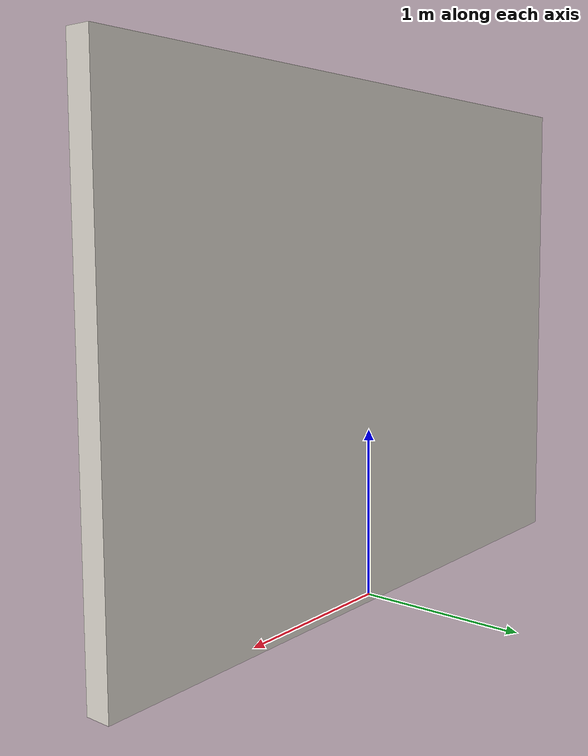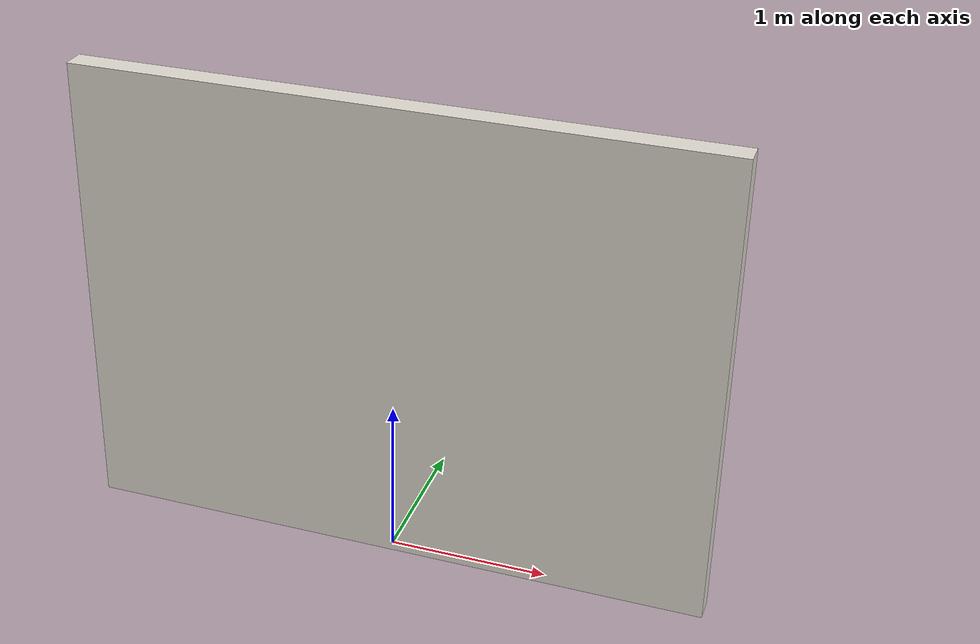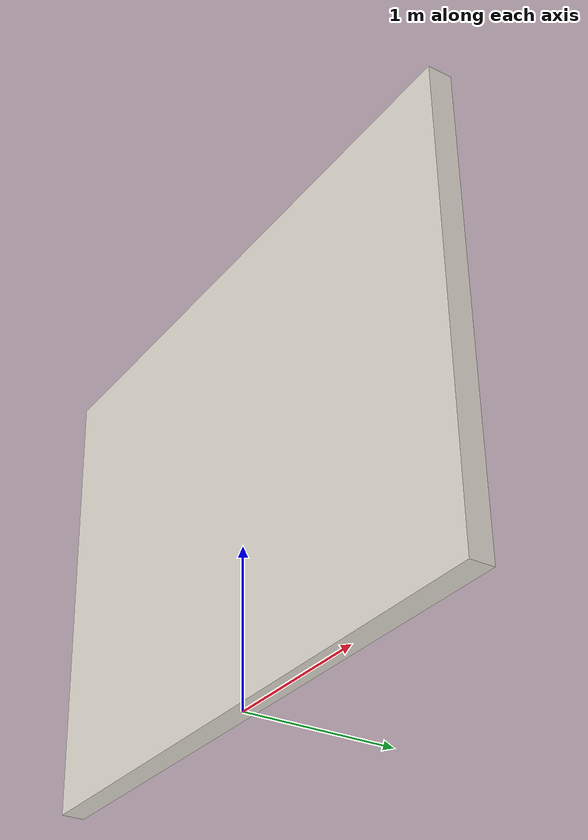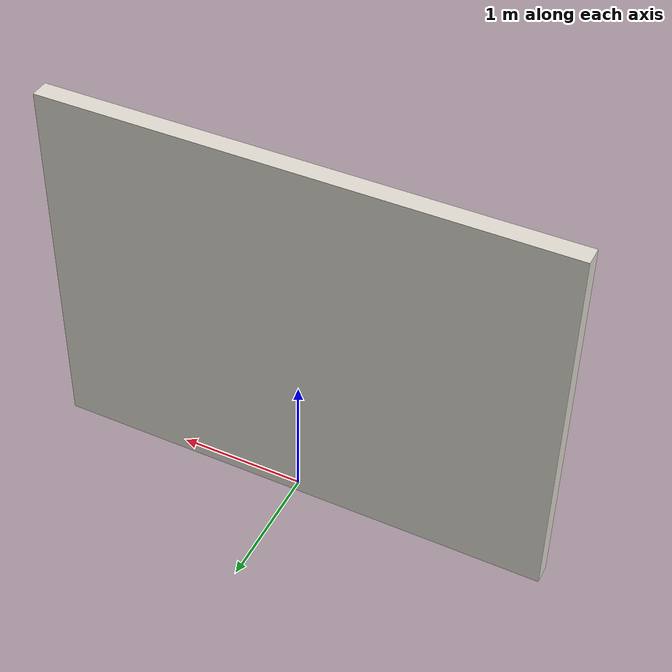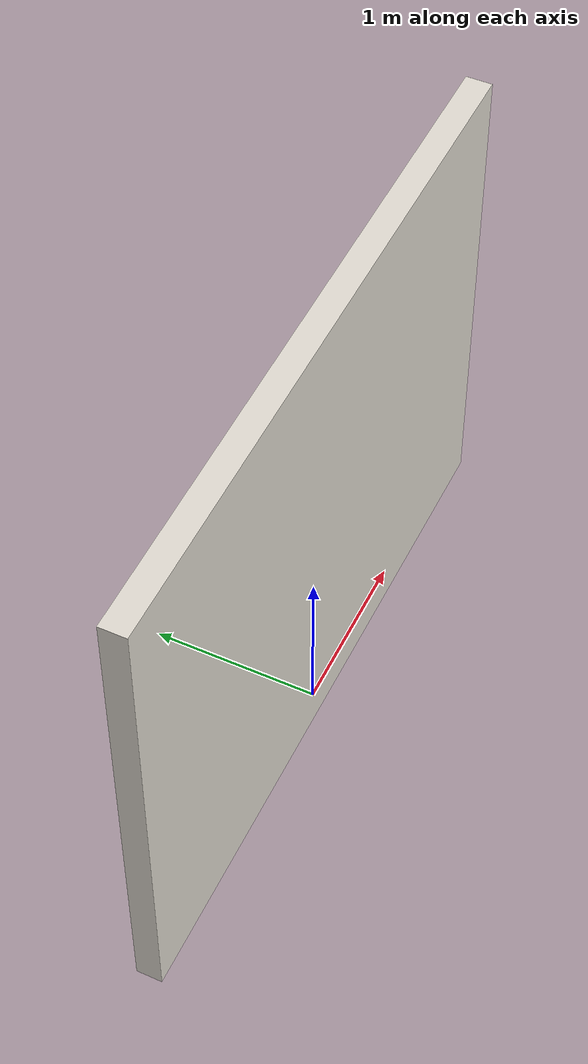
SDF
<?xml version="1.0" ?>
<sdf version="1.6">
  <model name="wall_segment_4m">
    <static>true</static>
    <link name="link">
      <pose>0 0 1.5 0 0 0</pose>
      <collision name="collision">
        <geometry>
          <box>
            <size>4.0 0.15 3.0</size>
          </box>
        </geometry>
      </collision>
      <visual name="visual">
        <geometry>
          <box>
            <size>4.0 0.15 3.0</size>
          </box>
        </geometry>
        <material>
          <ambient>0.88 0.86 0.82 1</ambient>
          <diffuse>0.88 0.86 0.82 1</diffuse>
          <specular>0.1 0.1 0.1 1</specular>
        </material>
      </visual>
    </link>
  </model>
</sdf>
